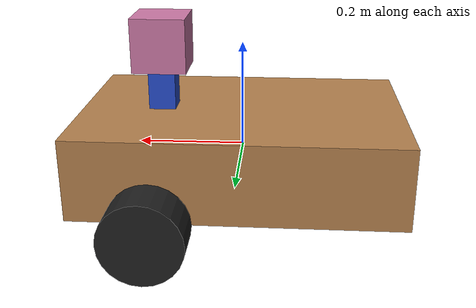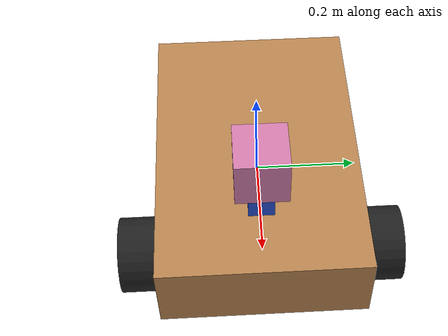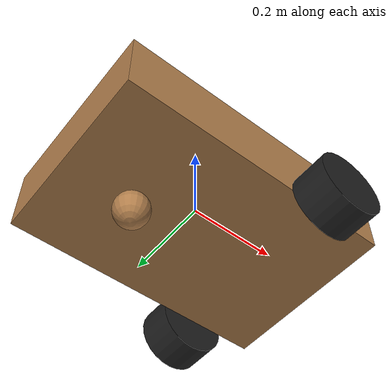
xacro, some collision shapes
<?xml version='1.0'?>

<robot name="my_robot" xmlns:xacro="http://www.ros.org/wiki/xacro">
  <xacro:include filename="$(find my_robot)/urdf/my_robot.gazebo" />
  <link name="robot_footprint"></link>

  <joint name="robot_footprint_joint" type="fixed">
    <origin xyz="0 0 0" rpy="0 0 0" />
    <parent link="robot_footprint"/>
    <child link="chassis" />
  </joint>

  <link name='chassis'>
    <pose>0 0 0.15 0 0 0</pose>

    <inertial>
      <mass value="10.0"/>
      <origin xyz="0.0 0 0" rpy=" 0 0 0"/>
      <inertia
          ixx="0.1" ixy="0" ixz="0"
          iyy="0.1" iyz="0"
          izz="0.1"
      />
    </inertial>

    <collision name='collision'>
      <origin xyz="0 0 0" rpy=" 0 0 0"/>
      <geometry>
        <box size="0.6 0.4 0.15"/>
      </geometry>
    </collision>

    <visual name='chassis_visual'>
      <origin xyz="0 0 0" rpy=" 0 0 0"/>
      <geometry>
        <box size="0.6 0.4 0.15"/>
      </geometry>
    </visual>

    <collision name='back_caster_collision'>
      <origin xyz="-0.15 0 -0.1125" rpy=" 0 0 0"/>
      <geometry>
        <sphere radius="0.0375"/>
      </geometry>
    </collision>

    <visual name='back_caster_visual'>
      <origin xyz="-0.15 0 -0.1125" rpy=" 0 0 0"/>
      <geometry>
        <sphere radius="0.0375"/>
      </geometry>
    </visual>

  </link>

  <link name='left_wheel'>

    <inertial>
      <mass value="1.0"/>
      <origin xyz="0 0 0" rpy=" 0 1.5707 1.5707"/>
      <inertia
          ixx="0.1" ixy="0" ixz="0"
          iyy="0.1" iyz="0"
          izz="0.1"
      />
    </inertial>

    <collision name='left_wheel_collision'>
      <origin xyz="0 0 0" rpy=" 1.5707 0 0"/>
      <geometry>
        <cylinder length="0.08" radius="0.075"/>
      </geometry>
    </collision>

    <visual name='left_wheel_visual'>
      <origin xyz="0 0 0" rpy=" 1.5707 0 0"/>
      <geometry>
        <cylinder length="0.08" radius="0.075"/>
      </geometry>
     </visual>
  </link>

  <joint type="continuous" name="left_wheel_hinge">
    <origin xyz="0.15 0.24 -0.075" rpy="0 0 0"/>
    <child link="left_wheel"/>
    <parent link="chassis"/>
    <axis xyz="0 1 0" rpy="0 0 0"/>
    <limit effort="10000" velocity="1000"/>
    <dynamics damping="1.0" friction="1.0"/>
  </joint>

    <link name='right_wheel'>

    <inertial>
      <mass value="1.0"/>
      <origin xyz="0 0 0" rpy=" 0 1.5707 1.5707"/>
      <inertia
          ixx="0.1" ixy="0" ixz="0"
          iyy="0.1" iyz="0"
          izz="0.1"
      />
    </inertial>

    <collision name='right_wheel_collision'>
      <origin xyz="0 0 0" rpy=" 1.5707 0 0"/>
      <geometry>
        <cylinder length="0.08" radius="0.075"/>
      </geometry>
    </collision>

    <visual name='right_wheel_visual'>
      <origin xyz="0 0 0" rpy=" 1.5707 0 0"/>
      <geometry>
        <cylinder length="0.08" radius="0.075"/>
      </geometry>
    </visual>
  </link>

  <joint type="continuous" name="right_wheel_hinge">
    <origin xyz="0.15 -0.24 -0.075" rpy="0 0 0"/>
    <child link="right_wheel"/>
    <parent link="chassis"/>
    <axis xyz="0 1 0" rpy="0 0 0"/>
    <limit effort="10000" velocity="1000"/>
    <dynamics damping="1.0" friction="1.0"/>
  </joint>

  <link name='stand'>

    <inertial>
      <mass value="1.0"/>
      <origin xyz="0.0 0 0" rpy=" 0 0 0"/>
      <inertia
          ixx="0.1" ixy="0" ixz="0"
          iyy="0.1" iyz="0"
          izz="0.1"
      />
    </inertial>

    <collision name='stand_collision'>
      <origin xyz="0 0 0" rpy=" 0 0 0"/>
      <geometry>
        <box size="0.05 0.05 0.1"/>
      </geometry>
    </collision>

    <visual name='stand_visual'>
      <origin xyz="0 0 0" rpy=" 0 0 0"/>
      <geometry>
        <box size="0.05 0.05 0.1"/>
      </geometry>
    </visual>
  </link>

  <joint type="fixed" name="stand_joint">
    <origin xyz="0.15 0 0.125" rpy="0 0 0"/>
    <child link="stand"/>
    <parent link="chassis"/>
    <axis xyz="0 1 0" rpy="0 0 0"/>
  </joint>

  <link name='camera'>

    <inertial>
      <mass value="0.1"/>
      <origin xyz="0 0 0" rpy=" 0 0 0"/>
      <inertia
          ixx="1e-6" ixy="0" ixz="0"
          iyy="1e-6" iyz="0"
          izz="1e-6"
      />
    </inertial>

    <collision name='camera_collision'>
      <origin xyz="0 0 0" rpy=" 0 0 0"/>
      <geometry>
        <box size=".05 .05 .05"/>
      </geometry>
    </collision>

    <visual name='camera_visual'>
	  <origin xyz="0 0 0" rpy=" 0 0 0"/>
      <geometry>
        <box size=".025 .025 .025"/>
      </geometry>
    </visual>
  </link>

  <joint type="fixed" name="camera_joint">
    <origin xyz="0.175 0 0.17" rpy="0 0 0"/>
    <child link="camera"/>
    <parent link="chassis"/>
    <axis xyz="0 1 0" rpy="0 0 0"/>
  </joint>

  <link name='hokuyo'>
    <inertial>
      <mass value="1e-5"/>
      <origin xyz="0 0 0" rpy=" 0 0 0"/>
      <inertia
          ixx="1e-6" ixy="0" ixz="0"
          iyy="1e-6" iyz="0"
          izz="1e-6"
      />
    </inertial>

    <collision name='hokuyo_collision'>
      <geometry>
        <box size=".1 .1 .1"/>
      </geometry>
    </collision>

    <visual name='hokuyo_visual'>
      <geometry>
        <mesh filename= "package://my_robot/meshes/hokuyo.dae"/>
      </geometry>
     </visual>
  </link>

  <joint type="fixed" name="hokuyo_joint">
    <origin xyz="0.15 0 0.2" rpy="0 0 0"/>
    <child link="hokuyo"/>
    <parent link="chassis"/>
    <axis xyz="0 1 0" rpy="0 0 0"/>
  </joint>

  <gazebo reference="left_wheel">
    <material>Gazebo/Black</material>
  </gazebo>

  <gazebo reference="right_wheel">
    <material>Gazebo/Black</material>
  </gazebo>

  <gazebo reference="stand">
    <material>Gazebo/Blue</material>
  </gazebo>

  <gazebo reference="camera">
    <material>Gazebo/Black</material>
  </gazebo>

  <gazebo reference="chassis">
    <material>Gazebo/WoodPallet</material>
  </gazebo>

</robot>
